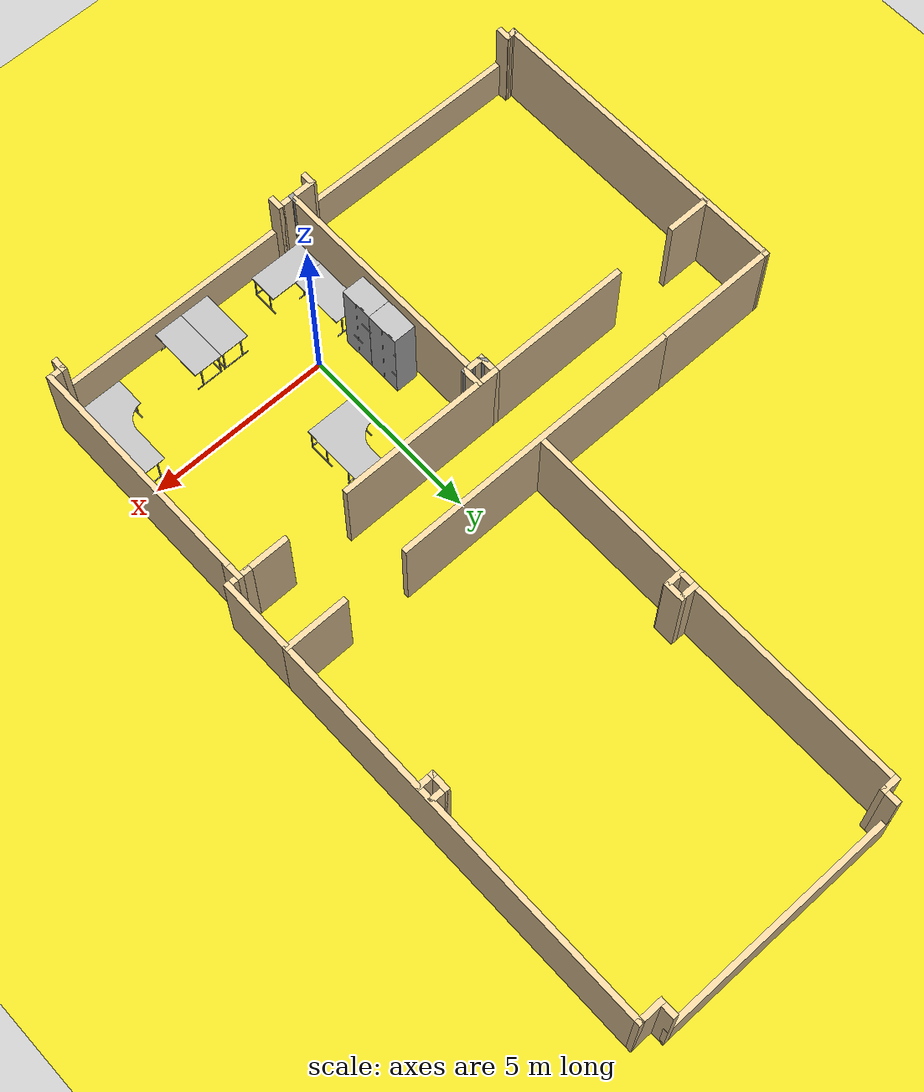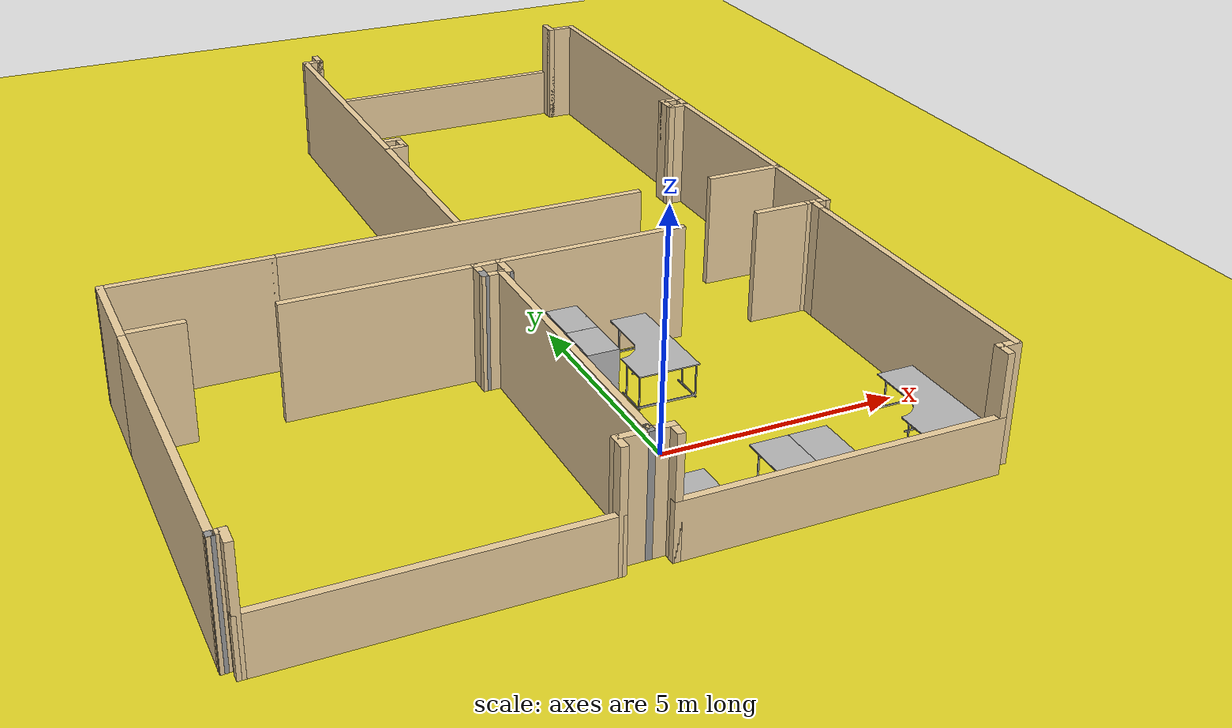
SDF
<sdf version="1.5">
 <world name="default">
  <light name="sun" type="directional">
   <cast_shadows>0</cast_shadows>
   <pose>2 0 7 0 -0 0</pose>
   <diffuse>0.8 0.8 0.8 1</diffuse>
   <specular>0.2 0.2 0.2 1</specular>
   <attenuation>
    <range>1000</range>
    <constant>0.5</constant>
    <linear>0.01</linear>
    <quadratic>0.001</quadratic>
   </attenuation>
   <direction>0.1 0.1 -0.9</direction>
  </light>
  <model name="ground_plane">
   <static>1</static>
   <link name="link">
    <collision name="collision">
     <geometry><plane><normal>0 0 1</normal><size>100 100</size></plane></geometry>
     <surface><friction><ode><mu>100</mu><mu2>50</mu2></ode></friction></surface>
    </collision>
    <visual name="visual">
     <cast_shadows>0</cast_shadows>
     <geometry><plane><normal>0 0 1</normal><size>100 100</size></plane></geometry>
     <material>
      <script><uri>file://media/materials/scripts/gazebo.material</uri><name>Gazebo/Yellow</name></script>
     </material>
    </visual>
    <velocity_decay><linear>0</linear><angular>0</angular></velocity_decay>
   </link>
  </model>
  <scene><ambient>0.4 0.4 0.4 1</ambient><background>0.7 0.7 0.7 1</background><shadows>0</shadows></scene>
  <physics type="ode">
   <max_step_size>0.01</max_step_size>
   <real_time_factor>1</real_time_factor>
   <real_time_update_rate>0</real_time_update_rate>
   <gravity>0 0 -9.8</gravity>
  </physics>
  <include><uri>model://skola</uri><pose>-1.5 7 0 0 0 0</pose></include>
  <include><uri>model://stul_150</uri><name>stul_150_SE_1_112_1</name><pose>-1.2 -1 0 0 0 1.57</pose></include>
  <include>
   <uri>model://stul_150</uri>
   <name>2_stul_150_SE_1_112</name>
   <pose>-0.85 -2.15 0 0 0 3.14</pose>
  </include>
  <include>
   <uri>model://stul_150</uri>
   <name>stul_150_SE_1_112_3</name>
   <pose>1.4 -2.15 0 0 0 -1.57</pose>
  </include>
  <include>
   <uri>model://stul_150</uri>
   <name>stul_150_SE_1_112_4</name>
   <pose>2.2 -2.15 0 0 0 1.57</pose>
  </include>
  <include>
   <uri>model://stul_l_pravy</uri>
   <name>stul_l_pravy_1_112_1</name>
   <pose>4 -0.2 0 0 0 -1.57</pose>
  </include>
  <include>
   <uri>model://stul_l_pravy</uri>
   <name>stul_l_pravy_1_112_2</name>
   <pose>0.3 3.8 0 0 0 -1.57</pose>
  </include>
  <include><uri>model://skrin_90</uri><pose>-1.2 1.35 0 0 0 1.57</pose><name>skrin_90_1_112_1</name></include>
  <include><uri>model://skrin_90</uri><pose>-1.2 0.448 0 0 0 1.57</pose><name>skrin_90_1_112_2</name></include>
 </world>
</sdf>

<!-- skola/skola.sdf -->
<sdf version='1.7'>
  <model name='skola'>
    <pose>3.81571 -0.0115 0 0 -0 0</pose>
    <link name='Wall_0'>
      <collision name='Wall_0_Collision'>
        <geometry>
          <box>
            <size>4 0.15 2.5</size>
          </box>
        </geometry>
        <pose>0 0 1.25 0 -0 0</pose>
      </collision>
      <visual name='Wall_0_Visual'>
        <pose>0 0 1.25 0 -0 0</pose>
        <geometry>
          <box>
            <size>4 0.15 2.5</size>
          </box>
        </geometry>
        <material>
          <script>
            <uri>file://media/materials/scripts/gazebo.material</uri>
            <name>Gazebo/Grey</name>
          </script>
          <ambient>0.921569 0.807843 0.615686 1</ambient>
        </material>
        <meta>
          <layer>0</layer>
        </meta>
      </visual>
      <pose>-2.46639 -3.07195 0 0 -0 0</pose>
    </link>
    <link name='Wall_1'>
      <collision name='Wall_1_Collision'>
        <geometry>
          <box>
            <size>0.5 0.15 2.5</size>
          </box>
        </geometry>
        <pose>0 0 1.25 0 -0 0</pose>
      </collision>
      <visual name='Wall_1_Visual'>
        <pose>0 0 1.25 0 -0 0</pose>
        <geometry>
          <box>
            <size>0.5 0.15 2.5</size>
          </box>
        </geometry>
        <material>
          <script>
            <uri>file://media/materials/scripts/gazebo.material</uri>
            <name>Gazebo/Grey</name>
          </script>
          <ambient>0.921569 0.807843 0.615686 1</ambient>
        </material>
        <meta>
          <layer>0</layer>
        </meta>
      </visual>
      <pose>-0.541394 -3.24695 0 0 -0 -1.5708</pose>
    </link>
    <link name='Wall_100'>
      <collision name='Wall_100_Collision'>
        <geometry>
          <box>
            <size>0.6 0.15 2.5</size>
          </box>
        </geometry>
        <pose>0 0 1.25 0 -0 0</pose>
      </collision>
      <visual name='Wall_100_Visual'>
        <pose>0 0 1.25 0 -0 0</pose>
        <geometry>
          <box>
            <size>0.6 0.15 2.5</size>
          </box>
        </geometry>
        <material>
          <script>
            <uri>file://media/materials/scripts/gazebo.material</uri>
            <name>Gazebo/Grey</name>
          </script>
          <ambient>0.921569 0.807843 0.615686 1</ambient>
        </material>
        <meta>
          <layer>0</layer>
        </meta>
      </visual>
      <pose>6.98329 -3.0915 0 0 -0 0</pose>
    </link>
    <link name='Wall_102'>
      <collision name='Wall_102_Collision'>
        <geometry>
          <box>
            <size>2.13 0.15 2.5</size>
          </box>
        </geometry>
        <pose>0 0 1.25 0 -0 0</pose>
      </collision>
      <visual name='Wall_102_Visual'>
        <pose>0 0 1.25 0 -0 0</pose>
        <geometry>
          <box>
            <size>2.13 0.15 2.5</size>
          </box>
        </geometry>
        <material>
          <script>
            <uri>file://media/materials/scripts/gazebo.material</uri>
            <name>Gazebo/Grey</name>
          </script>
          <ambient>0.921569 0.807843 0.615686 1</ambient>
        </material>
        <meta>
          <layer>0</layer>
        </meta>
      </visual>
      <pose>-7.30671 -2.1155 0 0 -0 1.5708</pose>
    </link>
    <link name='Wall_104'>
      <collision name='Wall_104_Collision'>
        <geometry>
          <box>
            <size>3.44231 0.15 2.5</size>
          </box>
        </geometry>
        <pose>0 0 1.25 0 -0 0</pose>
      </collision>
      <visual name='Wall_104_Visual'>
        <pose>0 0 1.25 0 -0 0</pose>
        <geometry>
          <box>
            <size>3.44231 0.15 2.5</size>
          </box>
        </geometry>
        <material>
          <script>
            <uri>file://media/materials/scripts/gazebo.material</uri>
            <name>Gazebo/Grey</name>
          </script>
          <ambient>0.921569 0.807843 0.615686 1</ambient>
        </material>
        <meta>
          <layer>0</layer>
        </meta>
      </visual>
      <pose>-5.66059 -1.12687 0 0 -0 3.14076</pose>
    </link>
    <link name='Wall_12'>
      <collision name='Wall_12_Collision'>
        <geometry>
          <box>
            <size>0.25 0.15 2.5</size>
          </box>
        </geometry>
        <pose>0 0 1.25 0 -0 0</pose>
      </collision>
      <visual name='Wall_12_Visual'>
        <pose>0 0 1.25 0 -0 0</pose>
        <geometry>
          <box>
            <size>0.25 0.15 2.5</size>
          </box>
        </geometry>
        <material>
          <script>
            <uri>file://media/materials/scripts/gazebo.material</uri>
            <name>Gazebo/Grey</name>
          </script>
          <ambient>1 1 1 1</ambient>
        </material>
        <meta>
          <layer>0</layer>
        </meta>
      </visual>
      <pose>-0.191552 -9.67173 0 0 -0 -1.57396</pose>
    </link>
    <link name='Wall_13'>
      <collision name='Wall_13_Collision'>
        <geometry>
          <box>
            <size>0.75 0.15 2.5</size>
          </box>
        </geometry>
        <pose>0 0 1.25 0 -0 0</pose>
      </collision>
      <visual name='Wall_13_Visual'>
        <pose>0 0 1.25 0 -0 0</pose>
        <geometry>
          <box>
            <size>0.75 0.15 2.5</size>
          </box>
        </geometry>
        <material>
          <script>
            <uri>file://media/materials/scripts/gazebo.material</uri>
            <name>Gazebo/Grey</name>
          </script>
          <ambient>0.921569 0.807843 0.615686 1</ambient>
        </material>
        <meta>
          <layer>0</layer>
        </meta>
      </visual>
      <pose>-0.491552 -9.72173 0 0 -0 -3.14084</pose>
    </link>
    <link name='Wall_14'>
      <collision name='Wall_14_Collision'>
        <geometry>
          <box>
            <size>0.390555 0.15 2.5</size>
          </box>
        </geometry>
        <pose>0 0 1.25 0 -0 0</pose>
      </collision>
      <visual name='Wall_14_Visual'>
        <pose>0 0 1.25 0 -0 0</pose>
        <geometry>
          <box>
            <size>0.390555 0.15 2.5</size>
          </box>
        </geometry>
        <material>
          <script>
            <uri>file://media/materials/scripts/gazebo.material</uri>
            <name>Gazebo/Grey</name>
          </script>
          <ambient>0.921569 0.807843 0.615686 1</ambient>
        </material>
        <meta>
          <layer>0</layer>
        </meta>
      </visual>
      <pose>-0.791394 -9.84223 0 0 -0 -1.5708</pose>
    </link>
    <link name='Wall_15'>
      <collision name='Wall_15_Collision'>
        <geometry>
          <box>
            <size>6.47657 0.15 1.2</size>
          </box>
        </geometry>
        <pose>0 0 0.6 0 -0 0</pose>
      </collision>
      <visual name='Wall_15_Visual'>
        <pose>0 0 0.6 0 -0 0</pose>
        <geometry>
          <box>
            <size>6.47657 0.15 1.2</size>
          </box>
        </geometry>
        <material>
          <script>
            <uri>file://media/materials/scripts/gazebo.material</uri>
            <name>Gazebo/Grey</name>
          </script>
          <ambient>0.921569 0.807843 0.615686 1</ambient>
        </material>
        <meta>
          <layer>0</layer>
        </meta>
      </visual>
      <pose>-3.94685 -9.95469 0 0 -0 3.13912</pose>
    </link>
    <link name='Wall_18'>
      <collision name='Wall_18_Collision'>
        <geometry>
          <box>
            <size>1.15224 0.15 2.5</size>
          </box>
        </geometry>
        <pose>0 0 1.25 0 -0 0</pose>
      </collision>
      <visual name='Wall_18_Visual'>
        <pose>0 0 1.25 0 -0 0</pose>
        <geometry>
          <box>
            <size>1.15224 0.15 2.5</size>
          </box>
        </geometry>
        <material>
          <script>
            <uri>file://media/materials/scripts/gazebo.material</uri>
            <name>Gazebo/Grey</name>
          </script>
          <ambient>0.921569 0.807843 0.615686 1</ambient>
        </material>
        <meta>
          <layer>0</layer>
        </meta>
      </visual>
      <pose>-6.70571 -3.0765 0 0 -0 3.1396</pose>
    </link>
    <link name='Wall_2'>
      <collision name='Wall_2_Collision'>
        <geometry>
          <box>
            <size>0.25 0.15 2.5</size>
          </box>
        </geometry>
        <pose>0 0 1.25 0 -0 0</pose>
      </collision>
      <visual name='Wall_2_Visual'>
        <pose>0 0 1.25 0 -0 0</pose>
        <geometry>
          <box>
            <size>0.25 0.15 2.5</size>
          </box>
        </geometry>
        <material>
          <script>
            <uri>file://media/materials/scripts/gazebo.material</uri>
            <name>Gazebo/Grey</name>
          </script>
          <ambient>1 1 1 1</ambient>
        </material>
        <meta>
          <layer>0</layer>
        </meta>
      </visual>
      <pose>-0.541394 -3.47195 0 0 -0 -1.5708</pose>
    </link>
    <link name='Wall_22'>
      <collision name='Wall_22_Collision'>
        <geometry>
          <box>
            <size>6.74777 0.15 2.5</size>
          </box>
        </geometry>
        <pose>0 0 1.25 0 -0 0</pose>
      </collision>
      <visual name='Wall_22_Visual'>
        <pose>0 0 1.25 0 -0 0</pose>
        <geometry>
          <box>
            <size>6.74777 0.15 2.5</size>
          </box>
        </geometry>
        <material>
          <script>
            <uri>file://media/materials/scripts/gazebo.material</uri>
            <name>Gazebo/Grey</name>
          </script>
          <ambient>0.921569 0.807843 0.615686 1</ambient>
        </material>
        <meta>
          <layer>0</layer>
        </meta>
      </visual>
      <pose>-7.30671 -6.4045 0 0 -0 -1.5708</pose>
    </link>
    <link name='Wall_23'>
      <collision name='Wall_23_Collision'>
        <geometry>
          <box>
            <size>0.15 0.15 2.5</size>
          </box>
        </geometry>
        <pose>0 0 1.25 0 -0 0</pose>
      </collision>
      <visual name='Wall_23_Visual'>
        <pose>0 0 1.25 0 -0 0</pose>
        <geometry>
          <box>
            <size>0.15 0.15 2.5</size>
          </box>
        </geometry>
        <material>
          <script>
            <uri>file://media/materials/scripts/gazebo.material</uri>
            <name>Gazebo/Grey</name>
          </script>
          <ambient>1 1 1 1</ambient>
        </material>
        <meta>
          <layer>0</layer>
        </meta>
      </visual>
      <pose>-7.30671 -9.7035 0 0 -0 0</pose>
    </link>
    <link name='Wall_25'>
      <collision name='Wall_25_Collision'>
        <geometry>
          <box>
            <size>0.15 0.15 2.5</size>
          </box>
        </geometry>
        <pose>0 0 1.25 0 -0 0</pose>
      </collision>
      <visual name='Wall_25_Visual'>
        <pose>0 0 1.25 0 -0 0</pose>
        <geometry>
          <box>
            <size>0.15 0.15 2.5</size>
          </box>
        </geometry>
        <material>
          <script>
            <uri>file://media/materials/scripts/gazebo.material</uri>
            <name>Gazebo/Grey</name>
          </script>
          <ambient>0.921569 0.807843 0.615686 1</ambient>
        </material>
        <meta>
          <layer>0</layer>
        </meta>
      </visual>
      <pose>-7.30671 -9.7035 0 0 -0 0</pose>
    </link>
    <link name='Wall_27'>
      <collision name='Wall_27_Collision'>
        <geometry>
          <box>
            <size>0.351876 0.15 2.5</size>
          </box>
        </geometry>
        <pose>0 0 1.25 0 -0 0</pose>
      </collision>
      <visual name='Wall_27_Visual'>
        <pose>0 0 1.25 0 -0 0</pose>
        <geometry>
          <box>
            <size>0.351876 0.15 2.5</size>
          </box>
        </geometry>
        <material>
          <script>
            <uri>file://media/materials/scripts/gazebo.material</uri>
            <name>Gazebo/Grey</name>
          </script>
          <ambient>0.921569 0.807843 0.615686 1</ambient>
        </material>
        <meta>
          <layer>0</layer>
        </meta>
      </visual>
      <pose>-7.20607 -9.69568 0 0 -0 0.077526</pose>
    </link>
    <link name='Wall_28'>
      <collision name='Wall_28_Collision'>
        <geometry>
          <box>
            <size>0.409049 0.15 2.5</size>
          </box>
        </geometry>
        <pose>0 0 1.25 0 -0 0</pose>
      </collision>
      <visual name='Wall_28_Visual'>
        <pose>0 0 1.25 0 -0 0</pose>
        <geometry>
          <box>
            <size>0.409049 0.15 2.5</size>
          </box>
        </geometry>
        <material>
          <script>
            <uri>file://media/materials/scripts/gazebo.material</uri>
            <name>Gazebo/Grey</name>
          </script>
          <ambient>0.921569 0.807843 0.615686 1</ambient>
        </material>
        <meta>
          <layer>0</layer>
        </meta>
      </visual>
      <pose>-7.09996 -9.81737 0 0 -0 -1.58888</pose>
    </link>
    <link name='Wall_3'>
      <collision name='Wall_3_Collision'>
        <geometry>
          <box>
            <size>0.5 0.15 2.5</size>
          </box>
        </geometry>
        <pose>0 0 1.25 0 -0 0</pose>
      </collision>
      <visual name='Wall_3_Visual'>
        <pose>0 0 1.25 0 -0 0</pose>
        <geometry>
          <box>
            <size>0.5 0.15 2.5</size>
          </box>
        </geometry>
        <material>
          <script>
            <uri>file://media/materials/scripts/gazebo.material</uri>
            <name>Gazebo/Grey</name>
          </script>
          <ambient>0.921569 0.807843 0.615686 1</ambient>
        </material>
        <meta>
          <layer>0</layer>
        </meta>
      </visual>
      <pose>-0.366552 -3.52173 0 0 -0 0.001291</pose>
    </link>
    <link name='Wall_31'>
      <collision name='Wall_31_Collision'>
        <geometry>
          <box>
            <size>0.3 0.15 2.5</size>
          </box>
        </geometry>
        <pose>0 0 1.25 0 -0 0</pose>
      </collision>
      <visual name='Wall_31_Visual'>
        <pose>0 0 1.25 0 -0 0</pose>
        <geometry>
          <box>
            <size>0.3 0.15 2.5</size>
          </box>
        </geometry>
        <material>
          <script>
            <uri>file://media/materials/scripts/gazebo.material</uri>
            <name>Gazebo/Grey</name>
          </script>
          <ambient>1 1 1 1</ambient>
        </material>
        <meta>
          <layer>0</layer>
        </meta>
      </visual>
      <pose>-0.116709 -3.5215 0 0 -0 0</pose>
    </link>
    <link name='Wall_34'>
      <collision name='Wall_34_Collision'>
        <geometry>
          <box>
            <size>4.6 0.15 2.5</size>
          </box>
        </geometry>
        <pose>0 0 1.25 0 -0 0</pose>
      </collision>
      <visual name='Wall_34_Visual'>
        <pose>0 0 1.25 0 -0 0</pose>
        <geometry>
          <box>
            <size>4.6 0.15 2.5</size>
          </box>
        </geometry>
        <material>
          <script>
            <uri>file://media/materials/scripts/gazebo.material</uri>
            <name>Gazebo/Grey</name>
          </script>
          <ambient>0.921569 0.807843 0.615686 1</ambient>
        </material>
        <meta>
          <layer>0</layer>
        </meta>
      </visual>
      <pose>1.68361 -3.07195 0 0 -0 0</pose>
    </link>
    <link name='Wall_41'>
      <collision name='Wall_41_Collision'>
        <geometry>
          <box>
            <size>0.592756 0.15 2.5</size>
          </box>
        </geometry>
        <pose>0 0 1.25 0 -0 0</pose>
      </collision>
      <visual name='Wall_41_Visual'>
        <pose>0 0 1.25 0 -0 0</pose>
        <geometry>
          <box>
            <size>0.592756 0.15 2.5</size>
          </box>
        </geometry>
        <material>
          <script>
            <uri>file://media/materials/scripts/gazebo.material</uri>
            <name>Gazebo/Grey</name>
          </script>
          <ambient>0.921569 0.807843 0.615686 1</ambient>
        </material>
        <meta>
          <layer>0</layer>
        </meta>
      </visual>
      <pose>-0.043425 -3.30013 0 0 -0 -1.56305</pose>
    </link>
    <link name='Wall_43'>
      <collision name='Wall_43_Collision'>
        <geometry>
          <box>
            <size>0.55 0.15 2.5</size>
          </box>
        </geometry>
        <pose>0 0 1.25 0 -0 0</pose>
      </collision>
      <visual name='Wall_43_Visual'>
        <pose>0 0 1.25 0 -0 0</pose>
        <geometry>
          <box>
            <size>0.55 0.15 2.5</size>
          </box>
        </geometry>
        <material>
          <script>
            <uri>file://media/materials/scripts/gazebo.material</uri>
            <name>Gazebo/Grey</name>
          </script>
          <ambient>0.921569 0.807843 0.615686 1</ambient>
        </material>
        <meta>
          <layer>0</layer>
        </meta>
      </visual>
      <pose>0.008291 -9.7215 0 0 -0 0</pose>
    </link>
    <link name='Wall_45'>
      <collision name='Wall_45_Collision'>
        <geometry>
          <box>
            <size>0.4 0.15 2.5</size>
          </box>
        </geometry>
        <pose>0 0 1.25 0 -0 0</pose>
      </collision>
      <visual name='Wall_45_Visual'>
        <pose>0 0 1.25 0 -0 0</pose>
        <geometry>
          <box>
            <size>0.4 0.15 2.5</size>
          </box>
        </geometry>
        <material>
          <script>
            <uri>file://media/materials/scripts/gazebo.material</uri>
            <name>Gazebo/Grey</name>
          </script>
          <ambient>0.921569 0.807843 0.615686 1</ambient>
        </material>
        <meta>
          <layer>0</layer>
        </meta>
      </visual>
      <pose>0.208291 -9.8465 0 0 -0 -1.5708</pose>
    </link>
    <link name='Wall_48'>
      <collision name='Wall_48_Collision'>
        <geometry>
          <box>
            <size>6.6 0.15 1.2</size>
          </box>
        </geometry>
        <pose>0 0 0.6 0 -0 0</pose>
      </collision>
      <visual name='Wall_48_Visual'>
        <pose>0 0 0.6 0 -0 0</pose>
        <geometry>
          <box>
            <size>6.6 0.15 1.2</size>
          </box>
        </geometry>
        <material>
          <script>
            <uri>file://media/materials/scripts/gazebo.material</uri>
            <name>Gazebo/Grey</name>
          </script>
          <ambient>0.921569 0.807843 0.615686 1</ambient>
        </material>
        <meta>
          <layer>0</layer>
        </meta>
      </visual>
      <pose>3.43329 -9.9715 0 0 -0 0</pose>
    </link>
    <link name='Wall_5'>
      <collision name='Wall_5_Collision'>
        <geometry>
          <box>
            <size>6.25 0.15 2.5</size>
          </box>
        </geometry>
        <pose>0 0 1.25 0 -0 0</pose>
      </collision>
      <visual name='Wall_5_Visual'>
        <pose>0 0 1.25 0 -0 0</pose>
        <geometry>
          <box>
            <size>6.25 0.15 2.5</size>
          </box>
        </geometry>
        <material>
          <script>
            <uri>file://media/materials/scripts/gazebo.material</uri>
            <name>Gazebo/Grey</name>
          </script>
          <ambient>0.921569 0.807843 0.615686 1</ambient>
        </material>
        <meta>
          <layer>0</layer>
        </meta>
      </visual>
      <pose>-0.191552 -6.57173 0 0 -0 -1.57075</pose>
    </link>
    <link name='Wall_50'>
      <collision name='Wall_50_Collision'>
        <geometry>
          <box>
            <size>0.4 0.15 2.5</size>
          </box>
        </geometry>
        <pose>0 0 1.25 0 -0 0</pose>
      </collision>
      <visual name='Wall_50_Visual'>
        <pose>0 0 1.25 0 -0 0</pose>
        <geometry>
          <box>
            <size>0.4 0.15 2.5</size>
          </box>
        </geometry>
        <material>
          <script>
            <uri>file://media/materials/scripts/gazebo.material</uri>
            <name>Gazebo/Grey</name>
          </script>
          <ambient>0.921569 0.807843 0.615686 1</ambient>
        </material>
        <meta>
          <layer>0</layer>
        </meta>
      </visual>
      <pose>6.65829 -9.8465 0 0 -0 1.5708</pose>
    </link>
    <link name='Wall_53'>
      <collision name='Wall_53_Collision'>
        <geometry>
          <box>
            <size>0.5 0.15 2.5</size>
          </box>
        </geometry>
        <pose>0 0 1.25 0 -0 0</pose>
      </collision>
      <visual name='Wall_53_Visual'>
        <pose>0 0 1.25 0 -0 0</pose>
        <geometry>
          <box>
            <size>0.5 0.15 2.5</size>
          </box>
        </geometry>
        <material>
          <script>
            <uri>file://media/materials/scripts/gazebo.material</uri>
            <name>Gazebo/Grey</name>
          </script>
          <ambient>0.921569 0.807843 0.615686 1</ambient>
        </material>
        <meta>
          <layer>0</layer>
        </meta>
      </visual>
      <pose>6.83329 -9.7215 0 0 -0 0</pose>
    </link>
    <link name='Wall_59'>
      <collision name='Wall_59_Collision'>
        <geometry>
          <box>
            <size>6.35 0.15 2.5</size>
          </box>
        </geometry>
        <pose>0 0 1.25 0 -0 0</pose>
      </collision>
      <visual name='Wall_59_Visual'>
        <pose>0 0 1.25 0 -0 0</pose>
        <geometry>
          <box>
            <size>6.35 0.15 2.5</size>
          </box>
        </geometry>
        <material>
          <script>
            <uri>file://media/materials/scripts/gazebo.material</uri>
            <name>Gazebo/Grey</name>
          </script>
          <ambient>0.921569 0.807843 0.615686 1</ambient>
        </material>
        <meta>
          <layer>0</layer>
        </meta>
      </visual>
      <pose>7.00829 -6.6215 0 0 -0 1.5708</pose>
    </link>
    <link name='Wall_65'>
      <collision name='Wall_65_Collision'>
        <geometry>
          <box>
            <size>0.58 0.15 2.5</size>
          </box>
        </geometry>
        <pose>0 0 1.25 0 -0 0</pose>
      </collision>
      <visual name='Wall_65_Visual'>
        <pose>0 0 1.25 0 -0 0</pose>
        <geometry>
          <box>
            <size>0.58 0.15 2.5</size>
          </box>
        </geometry>
        <material>
          <script>
            <uri>file://media/materials/scripts/gazebo.material</uri>
            <name>Gazebo/Grey</name>
          </script>
          <ambient>0.921569 0.807843 0.615686 1</ambient>
        </material>
        <meta>
          <layer>0</layer>
        </meta>
      </visual>
      <pose>7.008290 -3.3065 0 0 -0 1.5708</pose>
    </link>
    <link name='Wall_67'>
      <collision name='Wall_67_Collision'>
        <geometry>
          <box>
            <size>1.2 0.15 2.5</size>
          </box>
        </geometry>
        <pose>0 0 1.25 0 -0 0</pose>
      </collision>
      <visual name='Wall_67_Visual'>
        <pose>0 0 1.25 0 -0 0</pose>
        <geometry>
          <box>
            <size>1.2 0.15 2.5</size>
          </box>
        </geometry>
        <material>
          <script>
            <uri>file://media/materials/scripts/gazebo.material</uri>
            <name>Gazebo/Grey</name>
          </script>
          <ambient>0.921569 0.807843 0.615686 1</ambient>
        </material>
        <meta>
          <layer>0</layer>
        </meta>
      </visual>
      <pose>6.23329 -3.0915 0 0 -0 3.14159</pose>
    </link>
    <link name='Wall_69'>
      <collision name='Wall_69_Collision'>
        <geometry>
          <box>
            <size>8 0.15 2.5</size>
          </box>
        </geometry>
        <pose>0 0 1.25 0 -0 0</pose>
      </collision>
      <visual name='Wall_69_Visual'>
        <pose>0 0 1.25 0 -0 0</pose>
        <geometry>
          <box>
            <size>8 0.15 2.5</size>
          </box>
        </geometry>
        <material>
          <script>
            <uri>file://media/materials/scripts/gazebo.material</uri>
            <name>Gazebo/Grey</name>
          </script>
          <ambient>0.921569 0.807843 0.615686 1</ambient>
        </material>
        <meta>
          <layer>0</layer>
        </meta>
      </visual>
      <pose>-0.03 -1.12824 0 0 -0 3.14159</pose>
    </link>
    <link name='Wall_73'>
      <collision name='Wall_73_Collision'>
        <geometry>
          <box>
            <size>1.75 0.15 2.5</size>
          </box>
        </geometry>
        <pose>0 0 1.25 0 -0 0</pose>
      </collision>
      <visual name='Wall_73_Visual'>
        <pose>0 0 1.25 0 -0 0</pose>
        <geometry>
          <box>
            <size>1.75 0.15 2.5</size>
          </box>
        </geometry>
        <material>
          <script>
            <uri>file://media/materials/scripts/gazebo.material</uri>
            <name>Gazebo/Grey</name>
          </script>
          <ambient>0.921569 0.807843 0.615686 1</ambient>
        </material>
        <meta>
          <layer>0</layer>
        </meta>
      </visual>
      <pose>6.51211 -1.12837 0 0 -0 -0.000159</pose>
    </link>
    <link name='Wall_75'>
      <collision name='Wall_75_Collision'>
        <geometry>
          <box>
            <size>10.9 0.15 2.5</size>
          </box>
        </geometry>
        <pose>0 0 1.25 0 -0 0</pose>
      </collision>
      <visual name='Wall_75_Visual'>
        <pose>0 0 1.25 0 -0 0</pose>
        <geometry>
          <box>
            <size>10.9 0.15 2.5</size>
          </box>
        </geometry>
        <material>
          <script>
            <uri>file://media/materials/scripts/gazebo.material</uri>
            <name>Gazebo/Grey</name>
          </script>
          <ambient>0.921569 0.807843 0.615686 1</ambient>
        </material>
        <meta>
          <layer>0</layer>
        </meta>
      </visual>
      <pose>7.31229 4.2465 0 0 -0 1.5708</pose>
    </link>
    <link name='Wall_77'>
      <collision name='Wall_77_Collision'>
        <geometry>
          <box>
            <size>0.75 0.15 2.5</size>
          </box>
        </geometry>
        <pose>0 0 1.25 0 -0 0</pose>
      </collision>
      <visual name='Wall_77_Visual'>
        <pose>0 0 1.25 0 -0 0</pose>
        <geometry>
          <box>
            <size>0.75 0.15 2.5</size>
          </box>
        </geometry>
        <material>
          <script>
            <uri>file://media/materials/scripts/gazebo.material</uri>
            <name>Gazebo/Grey</name>
          </script>
          <ambient>0.921569 0.807843 0.615686 1</ambient>
        </material>
        <meta>
          <layer>0</layer>
        </meta>
      </visual>
      <pose>7.01229 9.6215 0 0 -0 3.14159</pose>
    </link>
    <link name='Wall_79'>
      <collision name='Wall_79_Collision'>
        <geometry>
          <box>
            <size>0.5 0.15 2.5</size>
          </box>
        </geometry>
        <pose>0 0 1.25 0 -0 0</pose>
      </collision>
      <visual name='Wall_79_Visual'>
        <pose>0 0 1.25 0 -0 0</pose>
        <geometry>
          <box>
            <size>0.5 0.15 2.5</size>
          </box>
        </geometry>
        <material>
          <script>
            <uri>file://media/materials/scripts/gazebo.material</uri>
            <name>Gazebo/Grey</name>
          </script>
          <ambient>0.921569 0.807843 0.615686 1</ambient>
        </material>
        <meta>
          <layer>0</layer>
        </meta>
      </visual>
      <pose>6.71229 9.7965 0 0 -0 1.5708</pose>
    </link>
    <link name='Wall_80'>
      <collision name='Wall_80_Collision'>
        <geometry>
          <box>
            <size>6.65 0.15 1.2</size>
          </box>
        </geometry>
        <pose>0 0 0.6 0 -0 0</pose>
      </collision>
      <visual name='Wall_80_Visual'>
        <pose>0 0 0.6 0 -0 0</pose>
        <geometry>
          <box>
            <size>6.65 0.15 1.2</size>
          </box>
        </geometry>
        <material>
          <script>
            <uri>file://media/materials/scripts/gazebo.material</uri>
            <name>Gazebo/Grey</name>
          </script>
          <ambient>0.921569 0.807843 0.615686 1</ambient>
        </material>
        <meta>
          <layer>0</layer>
        </meta>
      </visual>
      <pose>3.46229 9.9715 0 0 -0 3.14159</pose>
    </link>
    <link name='Wall_82'>
      <collision name='Wall_82_Collision'>
        <geometry>
          <box>
            <size>0.5 0.15 2.5</size>
          </box>
        </geometry>
        <pose>0 0 1.25 0 -0 0</pose>
      </collision>
      <visual name='Wall_82_Visual'>
        <pose>0 0 1.25 0 -0 0</pose>
        <geometry>
          <box>
            <size>0.5 0.15 2.5</size>
          </box>
        </geometry>
        <material>
          <script>
            <uri>file://media/materials/scripts/gazebo.material</uri>
            <name>Gazebo/Grey</name>
          </script>
          <ambient>0.921569 0.807843 0.615686 1</ambient>
        </material>
        <meta>
          <layer>0</layer>
        </meta>
      </visual>
      <pose>0.212291 9.7965 0 0 -0 -1.5708</pose>
    </link>
    <link name='Wall_87'>
      <collision name='Wall_87_Collision'>
        <geometry>
          <box>
            <size>0.5 0.15 2.5</size>
          </box>
        </geometry>
        <pose>0 0 1.25 0 -0 0</pose>
      </collision>
      <visual name='Wall_87_Visual'>
        <pose>0 0 1.25 0 -0 0</pose>
        <geometry>
          <box>
            <size>0.5 0.15 2.5</size>
          </box>
        </geometry>
        <material>
          <script>
            <uri>file://media/materials/scripts/gazebo.material</uri>
            <name>Gazebo/Grey</name>
          </script>
          <ambient>0.921569 0.807843 0.615686 1</ambient>
        </material>
        <meta>
          <layer>0</layer>
        </meta>
      </visual>
      <pose>0.037291 9.6215 0 0 -0 3.14159</pose>
    </link>
    <link name='Wall_88'>
      <collision name='Wall_88_Collision'>
        <geometry>
          <box>
            <size>10.75 0.15 2.5</size>
          </box>
        </geometry>
        <pose>0 0 1.25 0 -0 0</pose>
      </collision>
      <visual name='Wall_88_Visual'>
        <pose>0 0 1.25 0 -0 0</pose>
        <geometry>
          <box>
            <size>10.75 0.15 2.5</size>
          </box>
        </geometry>
        <material>
          <script>
            <uri>file://media/materials/scripts/gazebo.material</uri>
            <name>Gazebo/Grey</name>
          </script>
          <ambient>0.921569 0.807843 0.615686 1</ambient>
        </material>
        <meta>
          <layer>0</layer>
        </meta>
      </visual>
      <pose>-0.137709 4.3215 0 0 -0 -1.5708</pose>
    </link>
    <link name='Wall_90'>
      <collision name='Wall_90_Collision'>
        <geometry>
          <box>
            <size>0.55 0.15 2.5</size>
          </box>
        </geometry>
        <pose>0 0 1.25 0 -0 0</pose>
      </collision>
      <visual name='Wall_90_Visual'>
        <pose>0 0 1.25 0 -0 0</pose>
        <geometry>
          <box>
            <size>0.55 0.15 2.5</size>
          </box>
        </geometry>
        <material>
          <script>
            <uri>file://media/materials/scripts/gazebo.material</uri>
            <name>Gazebo/Grey</name>
          </script>
          <ambient>0.921569 0.807843 0.615686 1</ambient>
        </material>
        <meta>
          <layer>0</layer>
        </meta>
      </visual>
      <pose>7.11229 3.0625 0 0 -0 3.14159</pose>
    </link>
    <link name='Wall_92'>
      <collision name='Wall_92_Collision'>
        <geometry>
          <box>
            <size>0.55 0.15 2.5</size>
          </box>
        </geometry>
        <pose>0 0 1.25 0 -0 0</pose>
      </collision>
      <visual name='Wall_92_Visual'>
        <pose>0 0 1.25 0 -0 0</pose>
        <geometry>
          <box>
            <size>0.55 0.15 2.5</size>
          </box>
        </geometry>
        <material>
          <script>
            <uri>file://media/materials/scripts/gazebo.material</uri>
            <name>Gazebo/Grey</name>
          </script>
          <ambient>0.921569 0.807843 0.615686 1</ambient>
        </material>
        <meta>
          <layer>0</layer>
        </meta>
      </visual>
      <pose>6.91229 3.2625 0 0 -0 1.5708</pose>
    </link>
    <link name='Wall_94'>
      <collision name='Wall_94_Collision'>
        <geometry>
          <box>
            <size>0.5 0.15 2.5</size>
          </box>
        </geometry>
        <pose>0 0 1.25 0 -0 0</pose>
      </collision>
      <visual name='Wall_94_Visual'>
        <pose>0 0 1.25 0 -0 0</pose>
        <geometry>
          <box>
            <size>0.5 0.15 2.5</size>
          </box>
        </geometry>
        <material>
          <script>
            <uri>file://media/materials/scripts/gazebo.material</uri>
            <name>Gazebo/Grey</name>
          </script>
          <ambient>0.921569 0.807843 0.615686 1</ambient>
        </material>
        <meta>
          <layer>0</layer>
        </meta>
      </visual>
      <pose>7.08729 3.4625 0 0 -0 0</pose>
    </link>
    <link name='Wall_98'>
      <collision name='Wall_98_Collision'>
        <geometry>
          <box>
            <size>2.11 0.15 2.5</size>
          </box>
        </geometry>
        <pose>0 0 1.25 0 -0 0</pose>
      </collision>
      <visual name='Wall_98_Visual'>
        <pose>0 0 1.25 0 -0 0</pose>
        <geometry>
          <box>
            <size>2.11 0.15 2.5</size>
          </box>
        </geometry>
        <material>
          <script>
            <uri>file://media/materials/scripts/gazebo.material</uri>
            <name>Gazebo/Grey</name>
          </script>
          <ambient>0.921569 0.807843 0.615686 1</ambient>
        </material>
        <meta>
          <layer>0</layer>
        </meta>
      </visual>
      <pose>7.31229 -2.1085 0 0 -0 -1.5708</pose>
    </link>
    <link name='Wall_99'>
      <collision name='Wall_99_Collision'>
        <geometry>
          <box>
            <size>0.55 0.15 2.5</size>
          </box>
        </geometry>
        <pose>0 0 1.25 0 -0 0</pose>
      </collision>
      <visual name='Wall_99_Visual'>
        <pose>0 0 1.25 0 -0 0</pose>
        <geometry>
          <box>
            <size>0.55 0.15 2.5</size>
          </box>
        </geometry>
        <material>
          <script>
            <uri>file://media/materials/scripts/gazebo.material</uri>
            <name>Gazebo/Grey</name>
          </script>
          <ambient>0.921569 0.807843 0.615686 1</ambient>
        </material>
        <meta>
          <layer>0</layer>
        </meta>
      </visual>
      <pose>0.265 3.525 0 0 -0 1.5708</pose>
    </link>
    <link name='Wall_97'>
      <collision name='Wall_97_Collision'>
        <geometry>
          <box>
            <size>0.55 0.15 2.5</size>
          </box>
        </geometry>
        <pose>0 0 1.25 0 -0 0</pose>
      </collision>
      <visual name='Wall_97_Visual'>
        <pose>0 0 1.25 0 -0 0</pose>
        <geometry>
          <box>
            <size>0.55 0.15 2.5</size>
          </box>
        </geometry>
        <material>
          <script>
            <uri>file://media/materials/scripts/gazebo.material</uri>
            <name>Gazebo/Grey</name>
          </script>
          <ambient>0.921569 0.807843 0.615686 1</ambient>
        </material>
        <meta>
          <layer>0</layer>
        </meta>
      </visual>
      <pose>0.064 3.3 0 0 -0 3.14159</pose>
    </link>
    <link name='Wall_96'>
      <collision name='Wall_96_Collision'>
        <geometry>
          <box>
            <size>0.55 0.15 2.5</size>
          </box>
        </geometry>
        <pose>0 0 1.25 0 -0 0</pose>
      </collision>
      <visual name='Wall_96_Visual'>
        <pose>0 0 1.25 0 -0 0</pose>
        <geometry>
          <box>
            <size>0.55 0.15 2.5</size>
          </box>
        </geometry>
        <material>
          <script>
            <uri>file://media/materials/scripts/gazebo.material</uri>
            <name>Gazebo/Grey</name>
          </script>
          <ambient>0.921569 0.807843 0.615686 1</ambient>
        </material>
        <meta>
          <layer>0</layer>
        </meta>
      </visual>
      <pose>0.064 3.725 0 0 -0 3.14159</pose>
    </link>

    <static>1</static>
  </model>
</sdf>

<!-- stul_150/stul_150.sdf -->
<sdf version="1.5">
<model name="stul_150">
	<pose>0 0 0 0 0 0</pose>
	<static>true</static>
	<link name="stul_150_collision">
		<collision name="stul_150_collision">
		<geometry>
			<mesh>
				<uri>model://stul_150/meshes/model.dae</uri>

			</mesh>
		</geometry>
		</collision>
	<visual name="stul_150_mesh">
	<cast_shadows>false</cast_shadows>
		<geometry>
			<mesh>
				<uri> model://stul_150/meshes/model.dae</uri>

			</mesh>
		</geometry>
		<material>
		<script>
			<uri> model://stul_150/material/scripts</uri>
			<uri> model://stul_150/material/textures</uri>
			<name>stul_150/Diffuse</name>
		</script>
		</material>

	</visual>
</link>
</model>
</sdf>

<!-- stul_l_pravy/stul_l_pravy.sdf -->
<sdf version="1.5">
<model name="stul_l_pravy">
	<pose>0 0 0 0 0 0</pose>
	<static>true</static>
	<link name="stul_l_pravy_collision">
		<collision name="stul_l_pravy_collision">
		<geometry>
			<mesh>
				<uri>model://stul_l_pravy/meshes/model.dae</uri>

			</mesh>
		</geometry>
		</collision>
	<visual name="stul_l_pravy_mesh">
	<cast_shadows>false</cast_shadows>
		<geometry>
			<mesh>
				<uri> model://stul_l_pravy/meshes/model.dae</uri>

			</mesh>
		</geometry>
		<material>
		<script>
			<uri> model://stul_l_pravy/material/scripts</uri>
			<uri> model://stul_l_pravy/material/textures</uri>
			<name>stul_l_pravy/Diffuse</name>
		</script>
		</material>

	</visual>
</link>
</model>
</sdf>

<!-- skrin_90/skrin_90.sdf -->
<sdf version="1.5">
<model name="skrin_90">
	<pose>0 0 0 0 0 0</pose>
	<static>true</static>
	<link name="skrin_90_collision">
		<collision name="skrin_90_collision">
		<geometry>
			<mesh>
				<uri>model://skrin_90/meshes/model.dae</uri>

			</mesh>
		</geometry>
		</collision>
	<visual name="skrin_90">
		<cast_shadows>false</cast_shadows>
		<geometry>
			<mesh>
				<uri> model://skrin_90/meshes/model.dae</uri>

			</mesh>
		</geometry>
		<material>
		<script>
			<uri> model://skrin_90/material/scripts</uri>
			<uri> model://skrin_90/material/textures</uri>
			<name>skrin_90/Diffuse</name>
		</script>
		</material>
	</visual>
</link>
</model>
</sdf>
